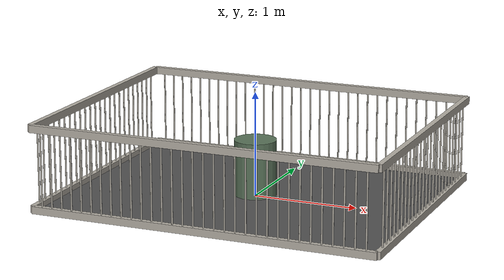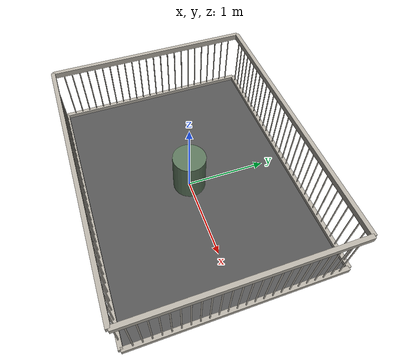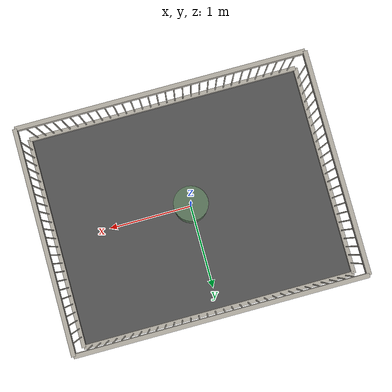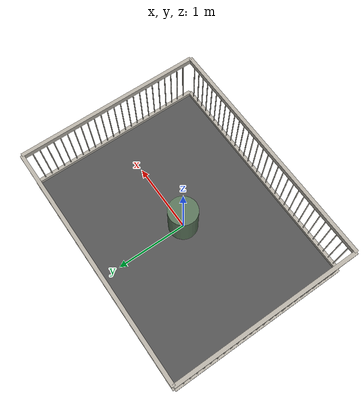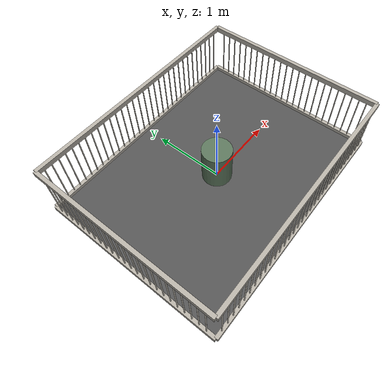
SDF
<?xml version="1.0" ?>
<sdf version="1.9">
  <world name="pig_pen_world">
    <gravity>0 0 -9.8</gravity>
    <magnetic_field>0 0 0</magnetic_field>
    <atmosphere type="adiabatic"/>

    <!-- Gazebo 核心系統：物理, 命令與場景廣播 -->
    <plugin
      filename="gz-sim-physics-system"
      name="gz::sim::systems::Physics">
    </plugin>
    <plugin
      filename="gz-sim-user-commands-system"
      name="gz::sim::systems::UserCommands">
    </plugin>
    <plugin
      filename="gz-sim-scene-broadcaster-system"
      name="gz::sim::systems::SceneBroadcaster">
    </plugin>

    <!-- 太陽光源 -->
    <light name="sun" type="directional">
      <cast_shadows>true</cast_shadows>
      <pose>0 0 10 0 0 0</pose>
      <diffuse>0.9 0.9 0.9 1</diffuse>
      <specular>0.2 0.2 0.2 1</specular>
      <direction>-0.4 0.1 -1</direction>
    </light>

    <!-- 地板：豬舍鳥瞰為 3.30m x 2.55m 長方形 -->
    <model name="floor">
      <static>true</static>
      <pose>0 0 0.01 0 0 0</pose>
      <link name="link">
        <collision name="collision">
          <geometry>
            <box>
              <size>3.30 2.55 0.02</size>
            </box>
          </geometry>
        </collision>
        <visual name="visual">
          <geometry>
            <box>
              <size>3.30 2.55 0.02</size>
            </box>
          </geometry>
          <material>
            <ambient>0.25 0.25 0.25 1</ambient>
            <diffuse>0.32 0.32 0.32 1</diffuse>
            <specular>0.05 0.05 0.05 1</specular>
          </material>
        </visual>
      </link>
    </model>

    <!-- left_wall：長 3.30m, 高 0.83m（欄杆化：直徑1.5cm，間距8.5cm，共32根） -->
    <model name="left_wall">
      <static>true</static>
      <pose>0 1.275 0 0 0 0</pose>
      <link name="link">
        <collision name="top_rail_col"><pose>0 0 0.795 0 0 0</pose><geometry><box><size>3.30 0.05 0.07</size></box></geometry></collision>
        <visual name="top_rail_vis"><pose>0 0 0.795 0 0 0</pose><geometry><box><size>3.30 0.05 0.07</size></box></geometry>
          <material><ambient>0.70 0.68 0.64 1</ambient><diffuse>0.70 0.68 0.64 1</diffuse></material></visual>
        <collision name="bottom_rail_col"><pose>0 0 0.035 0 0 0</pose><geometry><box><size>3.30 0.05 0.07</size></box></geometry></collision>
        <visual name="bottom_rail_vis"><pose>0 0 0.035 0 0 0</pose><geometry><box><size>3.30 0.05 0.07</size></box></geometry>
          <material><ambient>0.70 0.68 0.64 1</ambient><diffuse>0.70 0.68 0.64 1</diffuse></material></visual>
        <collision name="bar_01_col"><pose>-1.55 0 0.415 0 0 0</pose><geometry><cylinder><radius>0.0075</radius><length>0.69</length></cylinder></geometry></collision><visual name="bar_01_vis"><pose>-1.55 0 0.415 0 0 0</pose><geometry><cylinder><radius>0.0075</radius><length>0.69</length></cylinder></geometry><material><ambient>0.70 0.68 0.64 1</ambient><diffuse>0.70 0.68 0.64 1</diffuse></material></visual>
        <collision name="bar_02_col"><pose>-1.45 0 0.415 0 0 0</pose><geometry><cylinder><radius>0.0075</radius><length>0.69</length></cylinder></geometry></collision><visual name="bar_02_vis"><pose>-1.45 0 0.415 0 0 0</pose><geometry><cylinder><radius>0.0075</radius><length>0.69</length></cylinder></geometry><material><ambient>0.70 0.68 0.64 1</ambient><diffuse>0.70 0.68 0.64 1</diffuse></material></visual>
        <collision name="bar_03_col"><pose>-1.35 0 0.415 0 0 0</pose><geometry><cylinder><radius>0.0075</radius><length>0.69</length></cylinder></geometry></collision><visual name="bar_03_vis"><pose>-1.35 0 0.415 0 0 0</pose><geometry><cylinder><radius>0.0075</radius><length>0.69</length></cylinder></geometry><material><ambient>0.70 0.68 0.64 1</ambient><diffuse>0.70 0.68 0.64 1</diffuse></material></visual>
        <collision name="bar_04_col"><pose>-1.25 0 0.415 0 0 0</pose><geometry><cylinder><radius>0.0075</radius><length>0.69</length></cylinder></geometry></collision><visual name="bar_04_vis"><pose>-1.25 0 0.415 0 0 0</pose><geometry><cylinder><radius>0.0075</radius><length>0.69</length></cylinder></geometry><material><ambient>0.70 0.68 0.64 1</ambient><diffuse>0.70 0.68 0.64 1</diffuse></material></visual>
        <collision name="bar_05_col"><pose>-1.15 0 0.415 0 0 0</pose><geometry><cylinder><radius>0.0075</radius><length>0.69</length></cylinder></geometry></collision><visual name="bar_05_vis"><pose>-1.15 0 0.415 0 0 0</pose><geometry><cylinder><radius>0.0075</radius><length>0.69</length></cylinder></geometry><material><ambient>0.70 0.68 0.64 1</ambient><diffuse>0.70 0.68 0.64 1</diffuse></material></visual>
        <collision name="bar_06_col"><pose>-1.05 0 0.415 0 0 0</pose><geometry><cylinder><radius>0.0075</radius><length>0.69</length></cylinder></geometry></collision><visual name="bar_06_vis"><pose>-1.05 0 0.415 0 0 0</pose><geometry><cylinder><radius>0.0075</radius><length>0.69</length></cylinder></geometry><material><ambient>0.70 0.68 0.64 1</ambient><diffuse>0.70 0.68 0.64 1</diffuse></material></visual>
        <collision name="bar_07_col"><pose>-0.95 0 0.415 0 0 0</pose><geometry><cylinder><radius>0.0075</radius><length>0.69</length></cylinder></geometry></collision><visual name="bar_07_vis"><pose>-0.95 0 0.415 0 0 0</pose><geometry><cylinder><radius>0.0075</radius><length>0.69</length></cylinder></geometry><material><ambient>0.70 0.68 0.64 1</ambient><diffuse>0.70 0.68 0.64 1</diffuse></material></visual>
        <collision name="bar_08_col"><pose>-0.85 0 0.415 0 0 0</pose><geometry><cylinder><radius>0.0075</radius><length>0.69</length></cylinder></geometry></collision><visual name="bar_08_vis"><pose>-0.85 0 0.415 0 0 0</pose><geometry><cylinder><radius>0.0075</radius><length>0.69</length></cylinder></geometry><material><ambient>0.70 0.68 0.64 1</ambient><diffuse>0.70 0.68 0.64 1</diffuse></material></visual>
        <collision name="bar_09_col"><pose>-0.75 0 0.415 0 0 0</pose><geometry><cylinder><radius>0.0075</radius><length>0.69</length></cylinder></geometry></collision><visual name="bar_09_vis"><pose>-0.75 0 0.415 0 0 0</pose><geometry><cylinder><radius>0.0075</radius><length>0.69</length></cylinder></geometry><material><ambient>0.70 0.68 0.64 1</ambient><diffuse>0.70 0.68 0.64 1</diffuse></material></visual>
        <collision name="bar_10_col"><pose>-0.65 0 0.415 0 0 0</pose><geometry><cylinder><radius>0.0075</radius><length>0.69</length></cylinder></geometry></collision><visual name="bar_10_vis"><pose>-0.65 0 0.415 0 0 0</pose><geometry><cylinder><radius>0.0075</radius><length>0.69</length></cylinder></geometry><material><ambient>0.70 0.68 0.64 1</ambient><diffuse>0.70 0.68 0.64 1</diffuse></material></visual>
        <collision name="bar_11_col"><pose>-0.55 0 0.415 0 0 0</pose><geometry><cylinder><radius>0.0075</radius><length>0.69</length></cylinder></geometry></collision><visual name="bar_11_vis"><pose>-0.55 0 0.415 0 0 0</pose><geometry><cylinder><radius>0.0075</radius><length>0.69</length></cylinder></geometry><material><ambient>0.70 0.68 0.64 1</ambient><diffuse>0.70 0.68 0.64 1</diffuse></material></visual>
        <collision name="bar_12_col"><pose>-0.45 0 0.415 0 0 0</pose><geometry><cylinder><radius>0.0075</radius><length>0.69</length></cylinder></geometry></collision><visual name="bar_12_vis"><pose>-0.45 0 0.415 0 0 0</pose><geometry><cylinder><radius>0.0075</radius><length>0.69</length></cylinder></geometry><material><ambient>0.70 0.68 0.64 1</ambient><diffuse>0.70 0.68 0.64 1</diffuse></material></visual>
        <collision name="bar_13_col"><pose>-0.35 0 0.415 0 0 0</pose><geometry><cylinder><radius>0.0075</radius><length>0.69</length></cylinder></geometry></collision><visual name="bar_13_vis"><pose>-0.35 0 0.415 0 0 0</pose><geometry><cylinder><radius>0.0075</radius><length>0.69</length></cylinder></geometry><material><ambient>0.70 0.68 0.64 1</ambient><diffuse>0.70 0.68 0.64 1</diffuse></material></visual>
        <collision name="bar_14_col"><pose>-0.25 0 0.415 0 0 0</pose><geometry><cylinder><radius>0.0075</radius><length>0.69</length></cylinder></geometry></collision><visual name="bar_14_vis"><pose>-0.25 0 0.415 0 0 0</pose><geometry><cylinder><radius>0.0075</radius><length>0.69</length></cylinder></geometry><material><ambient>0.70 0.68 0.64 1</ambient><diffuse>0.70 0.68 0.64 1</diffuse></material></visual>
        <collision name="bar_15_col"><pose>-0.15 0 0.415 0 0 0</pose><geometry><cylinder><radius>0.0075</radius><length>0.69</length></cylinder></geometry></collision><visual name="bar_15_vis"><pose>-0.15 0 0.415 0 0 0</pose><geometry><cylinder><radius>0.0075</radius><length>0.69</length></cylinder></geometry><material><ambient>0.70 0.68 0.64 1</ambient><diffuse>0.70 0.68 0.64 1</diffuse></material></visual>
        <collision name="bar_16_col"><pose>-0.05 0 0.415 0 0 0</pose><geometry><cylinder><radius>0.0075</radius><length>0.69</length></cylinder></geometry></collision><visual name="bar_16_vis"><pose>-0.05 0 0.415 0 0 0</pose><geometry><cylinder><radius>0.0075</radius><length>0.69</length></cylinder></geometry><material><ambient>0.70 0.68 0.64 1</ambient><diffuse>0.70 0.68 0.64 1</diffuse></material></visual>
        <collision name="bar_17_col"><pose>0.05 0 0.415 0 0 0</pose><geometry><cylinder><radius>0.0075</radius><length>0.69</length></cylinder></geometry></collision><visual name="bar_17_vis"><pose>0.05 0 0.415 0 0 0</pose><geometry><cylinder><radius>0.0075</radius><length>0.69</length></cylinder></geometry><material><ambient>0.70 0.68 0.64 1</ambient><diffuse>0.70 0.68 0.64 1</diffuse></material></visual>
        <collision name="bar_18_col"><pose>0.15 0 0.415 0 0 0</pose><geometry><cylinder><radius>0.0075</radius><length>0.69</length></cylinder></geometry></collision><visual name="bar_18_vis"><pose>0.15 0 0.415 0 0 0</pose><geometry><cylinder><radius>0.0075</radius><length>0.69</length></cylinder></geometry><material><ambient>0.70 0.68 0.64 1</ambient><diffuse>0.70 0.68 0.64 1</diffuse></material></visual>
        <collision name="bar_19_col"><pose>0.25 0 0.415 0 0 0</pose><geometry><cylinder><radius>0.0075</radius><length>0.69</length></cylinder></geometry></collision><visual name="bar_19_vis"><pose>0.25 0 0.415 0 0 0</pose><geometry><cylinder><radius>0.0075</radius><length>0.69</length></cylinder></geometry><material><ambient>0.70 0.68 0.64 1</ambient><diffuse>0.70 0.68 0.64 1</diffuse></material></visual>
        <collision name="bar_20_col"><pose>0.35 0 0.415 0 0 0</pose><geometry><cylinder><radius>0.0075</radius><length>0.69</length></cylinder></geometry></collision><visual name="bar_20_vis"><pose>0.35 0 0.415 0 0 0</pose><geometry><cylinder><radius>0.0075</radius><length>0.69</length></cylinder></geometry><material><ambient>0.70 0.68 0.64 1</ambient><diffuse>0.70 0.68 0.64 1</diffuse></material></visual>
        <collision name="bar_21_col"><pose>0.45 0 0.415 0 0 0</pose><geometry><cylinder><radius>0.0075</radius><length>0.69</length></cylinder></geometry></collision><visual name="bar_21_vis"><pose>0.45 0 0.415 0 0 0</pose><geometry><cylinder><radius>0.0075</radius><length>0.69</length></cylinder></geometry><material><ambient>0.70 0.68 0.64 1</ambient><diffuse>0.70 0.68 0.64 1</diffuse></material></visual>
        <collision name="bar_22_col"><pose>0.55 0 0.415 0 0 0</pose><geometry><cylinder><radius>0.0075</radius><length>0.69</length></cylinder></geometry></collision><visual name="bar_22_vis"><pose>0.55 0 0.415 0 0 0</pose><geometry><cylinder><radius>0.0075</radius><length>0.69</length></cylinder></geometry><material><ambient>0.70 0.68 0.64 1</ambient><diffuse>0.70 0.68 0.64 1</diffuse></material></visual>
        <collision name="bar_23_col"><pose>0.65 0 0.415 0 0 0</pose><geometry><cylinder><radius>0.0075</radius><length>0.69</length></cylinder></geometry></collision><visual name="bar_23_vis"><pose>0.65 0 0.415 0 0 0</pose><geometry><cylinder><radius>0.0075</radius><length>0.69</length></cylinder></geometry><material><ambient>0.70 0.68 0.64 1</ambient><diffuse>0.70 0.68 0.64 1</diffuse></material></visual>
        <collision name="bar_24_col"><pose>0.75 0 0.415 0 0 0</pose><geometry><cylinder><radius>0.0075</radius><length>0.69</length></cylinder></geometry></collision><visual name="bar_24_vis"><pose>0.75 0 0.415 0 0 0</pose><geometry><cylinder><radius>0.0075</radius><length>0.69</length></cylinder></geometry><material><ambient>0.70 0.68 0.64 1</ambient><diffuse>0.70 0.68 0.64 1</diffuse></material></visual>
        <collision name="bar_25_col"><pose>0.85 0 0.415 0 0 0</pose><geometry><cylinder><radius>0.0075</radius><length>0.69</length></cylinder></geometry></collision><visual name="bar_25_vis"><pose>0.85 0 0.415 0 0 0</pose><geometry><cylinder><radius>0.0075</radius><length>0.69</length></cylinder></geometry><material><ambient>0.70 0.68 0.64 1</ambient><diffuse>0.70 0.68 0.64 1</diffuse></material></visual>
        <collision name="bar_26_col"><pose>0.95 0 0.415 0 0 0</pose><geometry><cylinder><radius>0.0075</radius><length>0.69</length></cylinder></geometry></collision><visual name="bar_26_vis"><pose>0.95 0 0.415 0 0 0</pose><geometry><cylinder><radius>0.0075</radius><length>0.69</length></cylinder></geometry><material><ambient>0.70 0.68 0.64 1</ambient><diffuse>0.70 0.68 0.64 1</diffuse></material></visual>
        <collision name="bar_27_col"><pose>1.05 0 0.415 0 0 0</pose><geometry><cylinder><radius>0.0075</radius><length>0.69</length></cylinder></geometry></collision><visual name="bar_27_vis"><pose>1.05 0 0.415 0 0 0</pose><geometry><cylinder><radius>0.0075</radius><length>0.69</length></cylinder></geometry><material><ambient>0.70 0.68 0.64 1</ambient><diffuse>0.70 0.68 0.64 1</diffuse></material></visual>
        <collision name="bar_28_col"><pose>1.15 0 0.415 0 0 0</pose><geometry><cylinder><radius>0.0075</radius><length>0.69</length></cylinder></geometry></collision><visual name="bar_28_vis"><pose>1.15 0 0.415 0 0 0</pose><geometry><cylinder><radius>0.0075</radius><length>0.69</length></cylinder></geometry><material><ambient>0.70 0.68 0.64 1</ambient><diffuse>0.70 0.68 0.64 1</diffuse></material></visual>
        <collision name="bar_29_col"><pose>1.25 0 0.415 0 0 0</pose><geometry><cylinder><radius>0.0075</radius><length>0.69</length></cylinder></geometry></collision><visual name="bar_29_vis"><pose>1.25 0 0.415 0 0 0</pose><geometry><cylinder><radius>0.0075</radius><length>0.69</length></cylinder></geometry><material><ambient>0.70 0.68 0.64 1</ambient><diffuse>0.70 0.68 0.64 1</diffuse></material></visual>
        <collision name="bar_30_col"><pose>1.35 0 0.415 0 0 0</pose><geometry><cylinder><radius>0.0075</radius><length>0.69</length></cylinder></geometry></collision><visual name="bar_30_vis"><pose>1.35 0 0.415 0 0 0</pose><geometry><cylinder><radius>0.0075</radius><length>0.69</length></cylinder></geometry><material><ambient>0.70 0.68 0.64 1</ambient><diffuse>0.70 0.68 0.64 1</diffuse></material></visual>
        <collision name="bar_31_col"><pose>1.45 0 0.415 0 0 0</pose><geometry><cylinder><radius>0.0075</radius><length>0.69</length></cylinder></geometry></collision><visual name="bar_31_vis"><pose>1.45 0 0.415 0 0 0</pose><geometry><cylinder><radius>0.0075</radius><length>0.69</length></cylinder></geometry><material><ambient>0.70 0.68 0.64 1</ambient><diffuse>0.70 0.68 0.64 1</diffuse></material></visual>
        <collision name="bar_32_col"><pose>1.55 0 0.415 0 0 0</pose><geometry><cylinder><radius>0.0075</radius><length>0.69</length></cylinder></geometry></collision><visual name="bar_32_vis"><pose>1.55 0 0.415 0 0 0</pose><geometry><cylinder><radius>0.0075</radius><length>0.69</length></cylinder></geometry><material><ambient>0.70 0.68 0.64 1</ambient><diffuse>0.70 0.68 0.64 1</diffuse></material></visual>
      </link>
    </model>

    <!-- right_wall：長 3.30m, 高 0.83m（欄杆化：直徑1.5cm，間距8.5cm，共32根） -->
    <model name="right_wall">
      <static>true</static>
      <pose>0 -1.275 0 0 0 0</pose>
      <link name="link">
        <collision name="top_rail_col"><pose>0 0 0.795 0 0 0</pose><geometry><box><size>3.30 0.05 0.07</size></box></geometry></collision>
        <visual name="top_rail_vis"><pose>0 0 0.795 0 0 0</pose><geometry><box><size>3.30 0.05 0.07</size></box></geometry>
          <material><ambient>0.70 0.68 0.64 1</ambient><diffuse>0.70 0.68 0.64 1</diffuse></material></visual>
        <collision name="bottom_rail_col"><pose>0 0 0.035 0 0 0</pose><geometry><box><size>3.30 0.05 0.07</size></box></geometry></collision>
        <visual name="bottom_rail_vis"><pose>0 0 0.035 0 0 0</pose><geometry><box><size>3.30 0.05 0.07</size></box></geometry>
          <material><ambient>0.70 0.68 0.64 1</ambient><diffuse>0.70 0.68 0.64 1</diffuse></material></visual>
        <collision name="bar_01_col"><pose>-1.55 0 0.415 0 0 0</pose><geometry><cylinder><radius>0.0075</radius><length>0.69</length></cylinder></geometry></collision><visual name="bar_01_vis"><pose>-1.55 0 0.415 0 0 0</pose><geometry><cylinder><radius>0.0075</radius><length>0.69</length></cylinder></geometry><material><ambient>0.70 0.68 0.64 1</ambient><diffuse>0.70 0.68 0.64 1</diffuse></material></visual>
        <collision name="bar_02_col"><pose>-1.45 0 0.415 0 0 0</pose><geometry><cylinder><radius>0.0075</radius><length>0.69</length></cylinder></geometry></collision><visual name="bar_02_vis"><pose>-1.45 0 0.415 0 0 0</pose><geometry><cylinder><radius>0.0075</radius><length>0.69</length></cylinder></geometry><material><ambient>0.70 0.68 0.64 1</ambient><diffuse>0.70 0.68 0.64 1</diffuse></material></visual>
        <collision name="bar_03_col"><pose>-1.35 0 0.415 0 0 0</pose><geometry><cylinder><radius>0.0075</radius><length>0.69</length></cylinder></geometry></collision><visual name="bar_03_vis"><pose>-1.35 0 0.415 0 0 0</pose><geometry><cylinder><radius>0.0075</radius><length>0.69</length></cylinder></geometry><material><ambient>0.70 0.68 0.64 1</ambient><diffuse>0.70 0.68 0.64 1</diffuse></material></visual>
        <collision name="bar_04_col"><pose>-1.25 0 0.415 0 0 0</pose><geometry><cylinder><radius>0.0075</radius><length>0.69</length></cylinder></geometry></collision><visual name="bar_04_vis"><pose>-1.25 0 0.415 0 0 0</pose><geometry><cylinder><radius>0.0075</radius><length>0.69</length></cylinder></geometry><material><ambient>0.70 0.68 0.64 1</ambient><diffuse>0.70 0.68 0.64 1</diffuse></material></visual>
        <collision name="bar_05_col"><pose>-1.15 0 0.415 0 0 0</pose><geometry><cylinder><radius>0.0075</radius><length>0.69</length></cylinder></geometry></collision><visual name="bar_05_vis"><pose>-1.15 0 0.415 0 0 0</pose><geometry><cylinder><radius>0.0075</radius><length>0.69</length></cylinder></geometry><material><ambient>0.70 0.68 0.64 1</ambient><diffuse>0.70 0.68 0.64 1</diffuse></material></visual>
        <collision name="bar_06_col"><pose>-1.05 0 0.415 0 0 0</pose><geometry><cylinder><radius>0.0075</radius><length>0.69</length></cylinder></geometry></collision><visual name="bar_06_vis"><pose>-1.05 0 0.415 0 0 0</pose><geometry><cylinder><radius>0.0075</radius><length>0.69</length></cylinder></geometry><material><ambient>0.70 0.68 0.64 1</ambient><diffuse>0.70 0.68 0.64 1</diffuse></material></visual>
        <collision name="bar_07_col"><pose>-0.95 0 0.415 0 0 0</pose><geometry><cylinder><radius>0.0075</radius><length>0.69</length></cylinder></geometry></collision><visual name="bar_07_vis"><pose>-0.95 0 0.415 0 0 0</pose><geometry><cylinder><radius>0.0075</radius><length>0.69</length></cylinder></geometry><material><ambient>0.70 0.68 0.64 1</ambient><diffuse>0.70 0.68 0.64 1</diffuse></material></visual>
        <collision name="bar_08_col"><pose>-0.85 0 0.415 0 0 0</pose><geometry><cylinder><radius>0.0075</radius><length>0.69</length></cylinder></geometry></collision><visual name="bar_08_vis"><pose>-0.85 0 0.415 0 0 0</pose><geometry><cylinder><radius>0.0075</radius><length>0.69</length></cylinder></geometry><material><ambient>0.70 0.68 0.64 1</ambient><diffuse>0.70 0.68 0.64 1</diffuse></material></visual>
        <collision name="bar_09_col"><pose>-0.75 0 0.415 0 0 0</pose><geometry><cylinder><radius>0.0075</radius><length>0.69</length></cylinder></geometry></collision><visual name="bar_09_vis"><pose>-0.75 0 0.415 0 0 0</pose><geometry><cylinder><radius>0.0075</radius><length>0.69</length></cylinder></geometry><material><ambient>0.70 0.68 0.64 1</ambient><diffuse>0.70 0.68 0.64 1</diffuse></material></visual>
        <collision name="bar_10_col"><pose>-0.65 0 0.415 0 0 0</pose><geometry><cylinder><radius>0.0075</radius><length>0.69</length></cylinder></geometry></collision><visual name="bar_10_vis"><pose>-0.65 0 0.415 0 0 0</pose><geometry><cylinder><radius>0.0075</radius><length>0.69</length></cylinder></geometry><material><ambient>0.70 0.68 0.64 1</ambient><diffuse>0.70 0.68 0.64 1</diffuse></material></visual>
        <collision name="bar_11_col"><pose>-0.55 0 0.415 0 0 0</pose><geometry><cylinder><radius>0.0075</radius><length>0.69</length></cylinder></geometry></collision><visual name="bar_11_vis"><pose>-0.55 0 0.415 0 0 0</pose><geometry><cylinder><radius>0.0075</radius><length>0.69</length></cylinder></geometry><material><ambient>0.70 0.68 0.64 1</ambient><diffuse>0.70 0.68 0.64 1</diffuse></material></visual>
        <collision name="bar_12_col"><pose>-0.45 0 0.415 0 0 0</pose><geometry><cylinder><radius>0.0075</radius><length>0.69</length></cylinder></geometry></collision><visual name="bar_12_vis"><pose>-0.45 0 0.415 0 0 0</pose><geometry><cylinder><radius>0.0075</radius><length>0.69</length></cylinder></geometry><material><ambient>0.70 0.68 0.64 1</ambient><diffuse>0.70 0.68 0.64 1</diffuse></material></visual>
        <collision name="bar_13_col"><pose>-0.35 0 0.415 0 0 0</pose><geometry><cylinder><radius>0.0075</radius><length>0.69</length></cylinder></geometry></collision><visual name="bar_13_vis"><pose>-0.35 0 0.415 0 0 0</pose><geometry><cylinder><radius>0.0075</radius><length>0.69</length></cylinder></geometry><material><ambient>0.70 0.68 0.64 1</ambient><diffuse>0.70 0.68 0.64 1</diffuse></material></visual>
        <collision name="bar_14_col"><pose>-0.25 0 0.415 0 0 0</pose><geometry><cylinder><radius>0.0075</radius><length>0.69</length></cylinder></geometry></collision><visual name="bar_14_vis"><pose>-0.25 0 0.415 0 0 0</pose><geometry><cylinder><radius>0.0075</radius><length>0.69</length></cylinder></geometry><material><ambient>0.70 0.68 0.64 1</ambient><diffuse>0.70 0.68 0.64 1</diffuse></material></visual>
        <collision name="bar_15_col"><pose>-0.15 0 0.415 0 0 0</pose><geometry><cylinder><radius>0.0075</radius><length>0.69</length></cylinder></geometry></collision><visual name="bar_15_vis"><pose>-0.15 0 0.415 0 0 0</pose><geometry><cylinder><radius>0.0075</radius><length>0.69</length></cylinder></geometry><material><ambient>0.70 0.68 0.64 1</ambient><diffuse>0.70 0.68 0.64 1</diffuse></material></visual>
        <collision name="bar_16_col"><pose>-0.05 0 0.415 0 0 0</pose><geometry><cylinder><radius>0.0075</radius><length>0.69</length></cylinder></geometry></collision><visual name="bar_16_vis"><pose>-0.05 0 0.415 0 0 0</pose><geometry><cylinder><radius>0.0075</radius><length>0.69</length></cylinder></geometry><material><ambient>0.70 0.68 0.64 1</ambient><diffuse>0.70 0.68 0.64 1</diffuse></material></visual>
        <collision name="bar_17_col"><pose>0.05 0 0.415 0 0 0</pose><geometry><cylinder><radius>0.0075</radius><length>0.69</length></cylinder></geometry></collision><visual name="bar_17_vis"><pose>0.05 0 0.415 0 0 0</pose><geometry><cylinder><radius>0.0075</radius><length>0.69</length></cylinder></geometry><material><ambient>0.70 0.68 0.64 1</ambient><diffuse>0.70 0.68 0.64 1</diffuse></material></visual>
        <collision name="bar_18_col"><pose>0.15 0 0.415 0 0 0</pose><geometry><cylinder><radius>0.0075</radius><length>0.69</length></cylinder></geometry></collision><visual name="bar_18_vis"><pose>0.15 0 0.415 0 0 0</pose><geometry><cylinder><radius>0.0075</radius><length>0.69</length></cylinder></geometry><material><ambient>0.70 0.68 0.64 1</ambient><diffuse>0.70 0.68 0.64 1</diffuse></material></visual>
        <collision name="bar_19_col"><pose>0.25 0 0.415 0 0 0</pose><geometry><cylinder><radius>0.0075</radius><length>0.69</length></cylinder></geometry></collision><visual name="bar_19_vis"><pose>0.25 0 0.415 0 0 0</pose><geometry><cylinder><radius>0.0075</radius><length>0.69</length></cylinder></geometry><material><ambient>0.70 0.68 0.64 1</ambient><diffuse>0.70 0.68 0.64 1</diffuse></material></visual>
        <collision name="bar_20_col"><pose>0.35 0 0.415 0 0 0</pose><geometry><cylinder><radius>0.0075</radius><length>0.69</length></cylinder></geometry></collision><visual name="bar_20_vis"><pose>0.35 0 0.415 0 0 0</pose><geometry><cylinder><radius>0.0075</radius><length>0.69</length></cylinder></geometry><material><ambient>0.70 0.68 0.64 1</ambient><diffuse>0.70 0.68 0.64 1</diffuse></material></visual>
        <collision name="bar_21_col"><pose>0.45 0 0.415 0 0 0</pose><geometry><cylinder><radius>0.0075</radius><length>0.69</length></cylinder></geometry></collision><visual name="bar_21_vis"><pose>0.45 0 0.415 0 0 0</pose><geometry><cylinder><radius>0.0075</radius><length>0.69</length></cylinder></geometry><material><ambient>0.70 0.68 0.64 1</ambient><diffuse>0.70 0.68 0.64 1</diffuse></material></visual>
        <collision name="bar_22_col"><pose>0.55 0 0.415 0 0 0</pose><geometry><cylinder><radius>0.0075</radius><length>0.69</length></cylinder></geometry></collision><visual name="bar_22_vis"><pose>0.55 0 0.415 0 0 0</pose><geometry><cylinder><radius>0.0075</radius><length>0.69</length></cylinder></geometry><material><ambient>0.70 0.68 0.64 1</ambient><diffuse>0.70 0.68 0.64 1</diffuse></material></visual>
        <collision name="bar_23_col"><pose>0.65 0 0.415 0 0 0</pose><geometry><cylinder><radius>0.0075</radius><length>0.69</length></cylinder></geometry></collision><visual name="bar_23_vis"><pose>0.65 0 0.415 0 0 0</pose><geometry><cylinder><radius>0.0075</radius><length>0.69</length></cylinder></geometry><material><ambient>0.70 0.68 0.64 1</ambient><diffuse>0.70 0.68 0.64 1</diffuse></material></visual>
        <collision name="bar_24_col"><pose>0.75 0 0.415 0 0 0</pose><geometry><cylinder><radius>0.0075</radius><length>0.69</length></cylinder></geometry></collision><visual name="bar_24_vis"><pose>0.75 0 0.415 0 0 0</pose><geometry><cylinder><radius>0.0075</radius><length>0.69</length></cylinder></geometry><material><ambient>0.70 0.68 0.64 1</ambient><diffuse>0.70 0.68 0.64 1</diffuse></material></visual>
        <collision name="bar_25_col"><pose>0.85 0 0.415 0 0 0</pose><geometry><cylinder><radius>0.0075</radius><length>0.69</length></cylinder></geometry></collision><visual name="bar_25_vis"><pose>0.85 0 0.415 0 0 0</pose><geometry><cylinder><radius>0.0075</radius><length>0.69</length></cylinder></geometry><material><ambient>0.70 0.68 0.64 1</ambient><diffuse>0.70 0.68 0.64 1</diffuse></material></visual>
        <collision name="bar_26_col"><pose>0.95 0 0.415 0 0 0</pose><geometry><cylinder><radius>0.0075</radius><length>0.69</length></cylinder></geometry></collision><visual name="bar_26_vis"><pose>0.95 0 0.415 0 0 0</pose><geometry><cylinder><radius>0.0075</radius><length>0.69</length></cylinder></geometry><material><ambient>0.70 0.68 0.64 1</ambient><diffuse>0.70 0.68 0.64 1</diffuse></material></visual>
        <collision name="bar_27_col"><pose>1.05 0 0.415 0 0 0</pose><geometry><cylinder><radius>0.0075</radius><length>0.69</length></cylinder></geometry></collision><visual name="bar_27_vis"><pose>1.05 0 0.415 0 0 0</pose><geometry><cylinder><radius>0.0075</radius><length>0.69</length></cylinder></geometry><material><ambient>0.70 0.68 0.64 1</ambient><diffuse>0.70 0.68 0.64 1</diffuse></material></visual>
        <collision name="bar_28_col"><pose>1.15 0 0.415 0 0 0</pose><geometry><cylinder><radius>0.0075</radius><length>0.69</length></cylinder></geometry></collision><visual name="bar_28_vis"><pose>1.15 0 0.415 0 0 0</pose><geometry><cylinder><radius>0.0075</radius><length>0.69</length></cylinder></geometry><material><ambient>0.70 0.68 0.64 1</ambient><diffuse>0.70 0.68 0.64 1</diffuse></material></visual>
        <collision name="bar_29_col"><pose>1.25 0 0.415 0 0 0</pose><geometry><cylinder><radius>0.0075</radius><length>0.69</length></cylinder></geometry></collision><visual name="bar_29_vis"><pose>1.25 0 0.415 0 0 0</pose><geometry><cylinder><radius>0.0075</radius><length>0.69</length></cylinder></geometry><material><ambient>0.70 0.68 0.64 1</ambient><diffuse>0.70 0.68 0.64 1</diffuse></material></visual>
        <collision name="bar_30_col"><pose>1.35 0 0.415 0 0 0</pose><geometry><cylinder><radius>0.0075</radius><length>0.69</length></cylinder></geometry></collision><visual name="bar_30_vis"><pose>1.35 0 0.415 0 0 0</pose><geometry><cylinder><radius>0.0075</radius><length>0.69</length></cylinder></geometry><material><ambient>0.70 0.68 0.64 1</ambient><diffuse>0.70 0.68 0.64 1</diffuse></material></visual>
        <collision name="bar_31_col"><pose>1.45 0 0.415 0 0 0</pose><geometry><cylinder><radius>0.0075</radius><length>0.69</length></cylinder></geometry></collision><visual name="bar_31_vis"><pose>1.45 0 0.415 0 0 0</pose><geometry><cylinder><radius>0.0075</radius><length>0.69</length></cylinder></geometry><material><ambient>0.70 0.68 0.64 1</ambient><diffuse>0.70 0.68 0.64 1</diffuse></material></visual>
        <collision name="bar_32_col"><pose>1.55 0 0.415 0 0 0</pose><geometry><cylinder><radius>0.0075</radius><length>0.69</length></cylinder></geometry></collision><visual name="bar_32_vis"><pose>1.55 0 0.415 0 0 0</pose><geometry><cylinder><radius>0.0075</radius><length>0.69</length></cylinder></geometry><material><ambient>0.70 0.68 0.64 1</ambient><diffuse>0.70 0.68 0.64 1</diffuse></material></visual>
      </link>
    </model>

    <!-- back_wall：長 2.55m, 高 0.83m（欄杆化：直徑1.5cm，間距8.5cm，共24根） -->
    <model name="back_wall">
      <static>true</static>
      <pose>1.65 0 0 0 0 0</pose>
      <link name="link">
        <collision name="top_rail_col"><pose>0 0 0.795 0 0 0</pose><geometry><box><size>0.05 2.55 0.07</size></box></geometry></collision>
        <visual name="top_rail_vis"><pose>0 0 0.795 0 0 0</pose><geometry><box><size>0.05 2.55 0.07</size></box></geometry>
          <material><ambient>0.70 0.68 0.64 1</ambient><diffuse>0.70 0.68 0.64 1</diffuse></material></visual>
        <collision name="bottom_rail_col"><pose>0 0 0.035 0 0 0</pose><geometry><box><size>0.05 2.55 0.07</size></box></geometry></collision>
        <visual name="bottom_rail_vis"><pose>0 0 0.035 0 0 0</pose><geometry><box><size>0.05 2.55 0.07</size></box></geometry>
          <material><ambient>0.70 0.68 0.64 1</ambient><diffuse>0.70 0.68 0.64 1</diffuse></material></visual>
        <collision name="bar_01_col"><pose>0 -1.15 0.415 0 0 0</pose><geometry><cylinder><radius>0.0075</radius><length>0.69</length></cylinder></geometry></collision><visual name="bar_01_vis"><pose>0 -1.15 0.415 0 0 0</pose><geometry><cylinder><radius>0.0075</radius><length>0.69</length></cylinder></geometry><material><ambient>0.70 0.68 0.64 1</ambient><diffuse>0.70 0.68 0.64 1</diffuse></material></visual>
        <collision name="bar_02_col"><pose>0 -1.05 0.415 0 0 0</pose><geometry><cylinder><radius>0.0075</radius><length>0.69</length></cylinder></geometry></collision><visual name="bar_02_vis"><pose>0 -1.05 0.415 0 0 0</pose><geometry><cylinder><radius>0.0075</radius><length>0.69</length></cylinder></geometry><material><ambient>0.70 0.68 0.64 1</ambient><diffuse>0.70 0.68 0.64 1</diffuse></material></visual>
        <collision name="bar_03_col"><pose>0 -0.95 0.415 0 0 0</pose><geometry><cylinder><radius>0.0075</radius><length>0.69</length></cylinder></geometry></collision><visual name="bar_03_vis"><pose>0 -0.95 0.415 0 0 0</pose><geometry><cylinder><radius>0.0075</radius><length>0.69</length></cylinder></geometry><material><ambient>0.70 0.68 0.64 1</ambient><diffuse>0.70 0.68 0.64 1</diffuse></material></visual>
        <collision name="bar_04_col"><pose>0 -0.85 0.415 0 0 0</pose><geometry><cylinder><radius>0.0075</radius><length>0.69</length></cylinder></geometry></collision><visual name="bar_04_vis"><pose>0 -0.85 0.415 0 0 0</pose><geometry><cylinder><radius>0.0075</radius><length>0.69</length></cylinder></geometry><material><ambient>0.70 0.68 0.64 1</ambient><diffuse>0.70 0.68 0.64 1</diffuse></material></visual>
        <collision name="bar_05_col"><pose>0 -0.75 0.415 0 0 0</pose><geometry><cylinder><radius>0.0075</radius><length>0.69</length></cylinder></geometry></collision><visual name="bar_05_vis"><pose>0 -0.75 0.415 0 0 0</pose><geometry><cylinder><radius>0.0075</radius><length>0.69</length></cylinder></geometry><material><ambient>0.70 0.68 0.64 1</ambient><diffuse>0.70 0.68 0.64 1</diffuse></material></visual>
        <collision name="bar_06_col"><pose>0 -0.65 0.415 0 0 0</pose><geometry><cylinder><radius>0.0075</radius><length>0.69</length></cylinder></geometry></collision><visual name="bar_06_vis"><pose>0 -0.65 0.415 0 0 0</pose><geometry><cylinder><radius>0.0075</radius><length>0.69</length></cylinder></geometry><material><ambient>0.70 0.68 0.64 1</ambient><diffuse>0.70 0.68 0.64 1</diffuse></material></visual>
        <collision name="bar_07_col"><pose>0 -0.55 0.415 0 0 0</pose><geometry><cylinder><radius>0.0075</radius><length>0.69</length></cylinder></geometry></collision><visual name="bar_07_vis"><pose>0 -0.55 0.415 0 0 0</pose><geometry><cylinder><radius>0.0075</radius><length>0.69</length></cylinder></geometry><material><ambient>0.70 0.68 0.64 1</ambient><diffuse>0.70 0.68 0.64 1</diffuse></material></visual>
        <collision name="bar_08_col"><pose>0 -0.45 0.415 0 0 0</pose><geometry><cylinder><radius>0.0075</radius><length>0.69</length></cylinder></geometry></collision><visual name="bar_08_vis"><pose>0 -0.45 0.415 0 0 0</pose><geometry><cylinder><radius>0.0075</radius><length>0.69</length></cylinder></geometry><material><ambient>0.70 0.68 0.64 1</ambient><diffuse>0.70 0.68 0.64 1</diffuse></material></visual>
        <collision name="bar_09_col"><pose>0 -0.35 0.415 0 0 0</pose><geometry><cylinder><radius>0.0075</radius><length>0.69</length></cylinder></geometry></collision><visual name="bar_09_vis"><pose>0 -0.35 0.415 0 0 0</pose><geometry><cylinder><radius>0.0075</radius><length>0.69</length></cylinder></geometry><material><ambient>0.70 0.68 0.64 1</ambient><diffuse>0.70 0.68 0.64 1</diffuse></material></visual>
        <collision name="bar_10_col"><pose>0 -0.25 0.415 0 0 0</pose><geometry><cylinder><radius>0.0075</radius><length>0.69</length></cylinder></geometry></collision><visual name="bar_10_vis"><pose>0 -0.25 0.415 0 0 0</pose><geometry><cylinder><radius>0.0075</radius><length>0.69</length></cylinder></geometry><material><ambient>0.70 0.68 0.64 1</ambient><diffuse>0.70 0.68 0.64 1</diffuse></material></visual>
        <collision name="bar_11_col"><pose>0 -0.15 0.415 0 0 0</pose><geometry><cylinder><radius>0.0075</radius><length>0.69</length></cylinder></geometry></collision><visual name="bar_11_vis"><pose>0 -0.15 0.415 0 0 0</pose><geometry><cylinder><radius>0.0075</radius><length>0.69</length></cylinder></geometry><material><ambient>0.70 0.68 0.64 1</ambient><diffuse>0.70 0.68 0.64 1</diffuse></material></visual>
        <collision name="bar_12_col"><pose>0 -0.05 0.415 0 0 0</pose><geometry><cylinder><radius>0.0075</radius><length>0.69</length></cylinder></geometry></collision><visual name="bar_12_vis"><pose>0 -0.05 0.415 0 0 0</pose><geometry><cylinder><radius>0.0075</radius><length>0.69</length></cylinder></geometry><material><ambient>0.70 0.68 0.64 1</ambient><diffuse>0.70 0.68 0.64 1</diffuse></material></visual>
        <collision name="bar_13_col"><pose>0 0.05 0.415 0 0 0</pose><geometry><cylinder><radius>0.0075</radius><length>0.69</length></cylinder></geometry></collision><visual name="bar_13_vis"><pose>0 0.05 0.415 0 0 0</pose><geometry><cylinder><radius>0.0075</radius><length>0.69</length></cylinder></geometry><material><ambient>0.70 0.68 0.64 1</ambient><diffuse>0.70 0.68 0.64 1</diffuse></material></visual>
        <collision name="bar_14_col"><pose>0 0.15 0.415 0 0 0</pose><geometry><cylinder><radius>0.0075</radius><length>0.69</length></cylinder></geometry></collision><visual name="bar_14_vis"><pose>0 0.15 0.415 0 0 0</pose><geometry><cylinder><radius>0.0075</radius><length>0.69</length></cylinder></geometry><material><ambient>0.70 0.68 0.64 1</ambient><diffuse>0.70 0.68 0.64 1</diffuse></material></visual>
        <collision name="bar_15_col"><pose>0 0.25 0.415 0 0 0</pose><geometry><cylinder><radius>0.0075</radius><length>0.69</length></cylinder></geometry></collision><visual name="bar_15_vis"><pose>0 0.25 0.415 0 0 0</pose><geometry><cylinder><radius>0.0075</radius><length>0.69</length></cylinder></geometry><material><ambient>0.70 0.68 0.64 1</ambient><diffuse>0.70 0.68 0.64 1</diffuse></material></visual>
        <collision name="bar_16_col"><pose>0 0.35 0.415 0 0 0</pose><geometry><cylinder><radius>0.0075</radius><length>0.69</length></cylinder></geometry></collision><visual name="bar_16_vis"><pose>0 0.35 0.415 0 0 0</pose><geometry><cylinder><radius>0.0075</radius><length>0.69</length></cylinder></geometry><material><ambient>0.70 0.68 0.64 1</ambient><diffuse>0.70 0.68 0.64 1</diffuse></material></visual>
        <collision name="bar_17_col"><pose>0 0.45 0.415 0 0 0</pose><geometry><cylinder><radius>0.0075</radius><length>0.69</length></cylinder></geometry></collision><visual name="bar_17_vis"><pose>0 0.45 0.415 0 0 0</pose><geometry><cylinder><radius>0.0075</radius><length>0.69</length></cylinder></geometry><material><ambient>0.70 0.68 0.64 1</ambient><diffuse>0.70 0.68 0.64 1</diffuse></material></visual>
        <collision name="bar_18_col"><pose>0 0.55 0.415 0 0 0</pose><geometry><cylinder><radius>0.0075</radius><length>0.69</length></cylinder></geometry></collision><visual name="bar_18_vis"><pose>0 0.55 0.415 0 0 0</pose><geometry><cylinder><radius>0.0075</radius><length>0.69</length></cylinder></geometry><material><ambient>0.70 0.68 0.64 1</ambient><diffuse>0.70 0.68 0.64 1</diffuse></material></visual>
        <collision name="bar_19_col"><pose>0 0.65 0.415 0 0 0</pose><geometry><cylinder><radius>0.0075</radius><length>0.69</length></cylinder></geometry></collision><visual name="bar_19_vis"><pose>0 0.65 0.415 0 0 0</pose><geometry><cylinder><radius>0.0075</radius><length>0.69</length></cylinder></geometry><material><ambient>0.70 0.68 0.64 1</ambient><diffuse>0.70 0.68 0.64 1</diffuse></material></visual>
        <collision name="bar_20_col"><pose>0 0.75 0.415 0 0 0</pose><geometry><cylinder><radius>0.0075</radius><length>0.69</length></cylinder></geometry></collision><visual name="bar_20_vis"><pose>0 0.75 0.415 0 0 0</pose><geometry><cylinder><radius>0.0075</radius><length>0.69</length></cylinder></geometry><material><ambient>0.70 0.68 0.64 1</ambient><diffuse>0.70 0.68 0.64 1</diffuse></material></visual>
        <collision name="bar_21_col"><pose>0 0.85 0.415 0 0 0</pose><geometry><cylinder><radius>0.0075</radius><length>0.69</length></cylinder></geometry></collision><visual name="bar_21_vis"><pose>0 0.85 0.415 0 0 0</pose><geometry><cylinder><radius>0.0075</radius><length>0.69</length></cylinder></geometry><material><ambient>0.70 0.68 0.64 1</ambient><diffuse>0.70 0.68 0.64 1</diffuse></material></visual>
        <collision name="bar_22_col"><pose>0 0.95 0.415 0 0 0</pose><geometry><cylinder><radius>0.0075</radius><length>0.69</length></cylinder></geometry></collision><visual name="bar_22_vis"><pose>0 0.95 0.415 0 0 0</pose><geometry><cylinder><radius>0.0075</radius><length>0.69</length></cylinder></geometry><material><ambient>0.70 0.68 0.64 1</ambient><diffuse>0.70 0.68 0.64 1</diffuse></material></visual>
        <collision name="bar_23_col"><pose>0 1.05 0.415 0 0 0</pose><geometry><cylinder><radius>0.0075</radius><length>0.69</length></cylinder></geometry></collision><visual name="bar_23_vis"><pose>0 1.05 0.415 0 0 0</pose><geometry><cylinder><radius>0.0075</radius><length>0.69</length></cylinder></geometry><material><ambient>0.70 0.68 0.64 1</ambient><diffuse>0.70 0.68 0.64 1</diffuse></material></visual>
        <collision name="bar_24_col"><pose>0 1.15 0.415 0 0 0</pose><geometry><cylinder><radius>0.0075</radius><length>0.69</length></cylinder></geometry></collision><visual name="bar_24_vis"><pose>0 1.15 0.415 0 0 0</pose><geometry><cylinder><radius>0.0075</radius><length>0.69</length></cylinder></geometry><material><ambient>0.70 0.68 0.64 1</ambient><diffuse>0.70 0.68 0.64 1</diffuse></material></visual>
      </link>
    </model>

    <!-- front_wall：長 2.55m, 高 0.83m（欄杆化：直徑1.5cm，間距8.5cm，共24根） -->
    <model name="front_wall">
      <static>true</static>
      <pose>-1.65 0 0 0 0 0</pose>
      <link name="link">
        <collision name="top_rail_col"><pose>0 0 0.795 0 0 0</pose><geometry><box><size>0.05 2.55 0.07</size></box></geometry></collision>
        <visual name="top_rail_vis"><pose>0 0 0.795 0 0 0</pose><geometry><box><size>0.05 2.55 0.07</size></box></geometry>
          <material><ambient>0.70 0.68 0.64 1</ambient><diffuse>0.70 0.68 0.64 1</diffuse></material></visual>
        <collision name="bottom_rail_col"><pose>0 0 0.035 0 0 0</pose><geometry><box><size>0.05 2.55 0.07</size></box></geometry></collision>
        <visual name="bottom_rail_vis"><pose>0 0 0.035 0 0 0</pose><geometry><box><size>0.05 2.55 0.07</size></box></geometry>
          <material><ambient>0.70 0.68 0.64 1</ambient><diffuse>0.70 0.68 0.64 1</diffuse></material></visual>
        <collision name="bar_01_col"><pose>0 -1.15 0.415 0 0 0</pose><geometry><cylinder><radius>0.0075</radius><length>0.69</length></cylinder></geometry></collision><visual name="bar_01_vis"><pose>0 -1.15 0.415 0 0 0</pose><geometry><cylinder><radius>0.0075</radius><length>0.69</length></cylinder></geometry><material><ambient>0.70 0.68 0.64 1</ambient><diffuse>0.70 0.68 0.64 1</diffuse></material></visual>
        <collision name="bar_02_col"><pose>0 -1.05 0.415 0 0 0</pose><geometry><cylinder><radius>0.0075</radius><length>0.69</length></cylinder></geometry></collision><visual name="bar_02_vis"><pose>0 -1.05 0.415 0 0 0</pose><geometry><cylinder><radius>0.0075</radius><length>0.69</length></cylinder></geometry><material><ambient>0.70 0.68 0.64 1</ambient><diffuse>0.70 0.68 0.64 1</diffuse></material></visual>
        <collision name="bar_03_col"><pose>0 -0.95 0.415 0 0 0</pose><geometry><cylinder><radius>0.0075</radius><length>0.69</length></cylinder></geometry></collision><visual name="bar_03_vis"><pose>0 -0.95 0.415 0 0 0</pose><geometry><cylinder><radius>0.0075</radius><length>0.69</length></cylinder></geometry><material><ambient>0.70 0.68 0.64 1</ambient><diffuse>0.70 0.68 0.64 1</diffuse></material></visual>
        <collision name="bar_04_col"><pose>0 -0.85 0.415 0 0 0</pose><geometry><cylinder><radius>0.0075</radius><length>0.69</length></cylinder></geometry></collision><visual name="bar_04_vis"><pose>0 -0.85 0.415 0 0 0</pose><geometry><cylinder><radius>0.0075</radius><length>0.69</length></cylinder></geometry><material><ambient>0.70 0.68 0.64 1</ambient><diffuse>0.70 0.68 0.64 1</diffuse></material></visual>
        <collision name="bar_05_col"><pose>0 -0.75 0.415 0 0 0</pose><geometry><cylinder><radius>0.0075</radius><length>0.69</length></cylinder></geometry></collision><visual name="bar_05_vis"><pose>0 -0.75 0.415 0 0 0</pose><geometry><cylinder><radius>0.0075</radius><length>0.69</length></cylinder></geometry><material><ambient>0.70 0.68 0.64 1</ambient><diffuse>0.70 0.68 0.64 1</diffuse></material></visual>
        <collision name="bar_06_col"><pose>0 -0.65 0.415 0 0 0</pose><geometry><cylinder><radius>0.0075</radius><length>0.69</length></cylinder></geometry></collision><visual name="bar_06_vis"><pose>0 -0.65 0.415 0 0 0</pose><geometry><cylinder><radius>0.0075</radius><length>0.69</length></cylinder></geometry><material><ambient>0.70 0.68 0.64 1</ambient><diffuse>0.70 0.68 0.64 1</diffuse></material></visual>
        <collision name="bar_07_col"><pose>0 -0.55 0.415 0 0 0</pose><geometry><cylinder><radius>0.0075</radius><length>0.69</length></cylinder></geometry></collision><visual name="bar_07_vis"><pose>0 -0.55 0.415 0 0 0</pose><geometry><cylinder><radius>0.0075</radius><length>0.69</length></cylinder></geometry><material><ambient>0.70 0.68 0.64 1</ambient><diffuse>0.70 0.68 0.64 1</diffuse></material></visual>
        <collision name="bar_08_col"><pose>0 -0.45 0.415 0 0 0</pose><geometry><cylinder><radius>0.0075</radius><length>0.69</length></cylinder></geometry></collision><visual name="bar_08_vis"><pose>0 -0.45 0.415 0 0 0</pose><geometry><cylinder><radius>0.0075</radius><length>0.69</length></cylinder></geometry><material><ambient>0.70 0.68 0.64 1</ambient><diffuse>0.70 0.68 0.64 1</diffuse></material></visual>
        <collision name="bar_09_col"><pose>0 -0.35 0.415 0 0 0</pose><geometry><cylinder><radius>0.0075</radius><length>0.69</length></cylinder></geometry></collision><visual name="bar_09_vis"><pose>0 -0.35 0.415 0 0 0</pose><geometry><cylinder><radius>0.0075</radius><length>0.69</length></cylinder></geometry><material><ambient>0.70 0.68 0.64 1</ambient><diffuse>0.70 0.68 0.64 1</diffuse></material></visual>
        <collision name="bar_10_col"><pose>0 -0.25 0.415 0 0 0</pose><geometry><cylinder><radius>0.0075</radius><length>0.69</length></cylinder></geometry></collision><visual name="bar_10_vis"><pose>0 -0.25 0.415 0 0 0</pose><geometry><cylinder><radius>0.0075</radius><length>0.69</length></cylinder></geometry><material><ambient>0.70 0.68 0.64 1</ambient><diffuse>0.70 0.68 0.64 1</diffuse></material></visual>
        <collision name="bar_11_col"><pose>0 -0.15 0.415 0 0 0</pose><geometry><cylinder><radius>0.0075</radius><length>0.69</length></cylinder></geometry></collision><visual name="bar_11_vis"><pose>0 -0.15 0.415 0 0 0</pose><geometry><cylinder><radius>0.0075</radius><length>0.69</length></cylinder></geometry><material><ambient>0.70 0.68 0.64 1</ambient><diffuse>0.70 0.68 0.64 1</diffuse></material></visual>
        <collision name="bar_12_col"><pose>0 -0.05 0.415 0 0 0</pose><geometry><cylinder><radius>0.0075</radius><length>0.69</length></cylinder></geometry></collision><visual name="bar_12_vis"><pose>0 -0.05 0.415 0 0 0</pose><geometry><cylinder><radius>0.0075</radius><length>0.69</length></cylinder></geometry><material><ambient>0.70 0.68 0.64 1</ambient><diffuse>0.70 0.68 0.64 1</diffuse></material></visual>
        <collision name="bar_13_col"><pose>0 0.05 0.415 0 0 0</pose><geometry><cylinder><radius>0.0075</radius><length>0.69</length></cylinder></geometry></collision><visual name="bar_13_vis"><pose>0 0.05 0.415 0 0 0</pose><geometry><cylinder><radius>0.0075</radius><length>0.69</length></cylinder></geometry><material><ambient>0.70 0.68 0.64 1</ambient><diffuse>0.70 0.68 0.64 1</diffuse></material></visual>
        <collision name="bar_14_col"><pose>0 0.15 0.415 0 0 0</pose><geometry><cylinder><radius>0.0075</radius><length>0.69</length></cylinder></geometry></collision><visual name="bar_14_vis"><pose>0 0.15 0.415 0 0 0</pose><geometry><cylinder><radius>0.0075</radius><length>0.69</length></cylinder></geometry><material><ambient>0.70 0.68 0.64 1</ambient><diffuse>0.70 0.68 0.64 1</diffuse></material></visual>
        <collision name="bar_15_col"><pose>0 0.25 0.415 0 0 0</pose><geometry><cylinder><radius>0.0075</radius><length>0.69</length></cylinder></geometry></collision><visual name="bar_15_vis"><pose>0 0.25 0.415 0 0 0</pose><geometry><cylinder><radius>0.0075</radius><length>0.69</length></cylinder></geometry><material><ambient>0.70 0.68 0.64 1</ambient><diffuse>0.70 0.68 0.64 1</diffuse></material></visual>
        <collision name="bar_16_col"><pose>0 0.35 0.415 0 0 0</pose><geometry><cylinder><radius>0.0075</radius><length>0.69</length></cylinder></geometry></collision><visual name="bar_16_vis"><pose>0 0.35 0.415 0 0 0</pose><geometry><cylinder><radius>0.0075</radius><length>0.69</length></cylinder></geometry><material><ambient>0.70 0.68 0.64 1</ambient><diffuse>0.70 0.68 0.64 1</diffuse></material></visual>
        <collision name="bar_17_col"><pose>0 0.45 0.415 0 0 0</pose><geometry><cylinder><radius>0.0075</radius><length>0.69</length></cylinder></geometry></collision><visual name="bar_17_vis"><pose>0 0.45 0.415 0 0 0</pose><geometry><cylinder><radius>0.0075</radius><length>0.69</length></cylinder></geometry><material><ambient>0.70 0.68 0.64 1</ambient><diffuse>0.70 0.68 0.64 1</diffuse></material></visual>
        <collision name="bar_18_col"><pose>0 0.55 0.415 0 0 0</pose><geometry><cylinder><radius>0.0075</radius><length>0.69</length></cylinder></geometry></collision><visual name="bar_18_vis"><pose>0 0.55 0.415 0 0 0</pose><geometry><cylinder><radius>0.0075</radius><length>0.69</length></cylinder></geometry><material><ambient>0.70 0.68 0.64 1</ambient><diffuse>0.70 0.68 0.64 1</diffuse></material></visual>
        <collision name="bar_19_col"><pose>0 0.65 0.415 0 0 0</pose><geometry><cylinder><radius>0.0075</radius><length>0.69</length></cylinder></geometry></collision><visual name="bar_19_vis"><pose>0 0.65 0.415 0 0 0</pose><geometry><cylinder><radius>0.0075</radius><length>0.69</length></cylinder></geometry><material><ambient>0.70 0.68 0.64 1</ambient><diffuse>0.70 0.68 0.64 1</diffuse></material></visual>
        <collision name="bar_20_col"><pose>0 0.75 0.415 0 0 0</pose><geometry><cylinder><radius>0.0075</radius><length>0.69</length></cylinder></geometry></collision><visual name="bar_20_vis"><pose>0 0.75 0.415 0 0 0</pose><geometry><cylinder><radius>0.0075</radius><length>0.69</length></cylinder></geometry><material><ambient>0.70 0.68 0.64 1</ambient><diffuse>0.70 0.68 0.64 1</diffuse></material></visual>
        <collision name="bar_21_col"><pose>0 0.85 0.415 0 0 0</pose><geometry><cylinder><radius>0.0075</radius><length>0.69</length></cylinder></geometry></collision><visual name="bar_21_vis"><pose>0 0.85 0.415 0 0 0</pose><geometry><cylinder><radius>0.0075</radius><length>0.69</length></cylinder></geometry><material><ambient>0.70 0.68 0.64 1</ambient><diffuse>0.70 0.68 0.64 1</diffuse></material></visual>
        <collision name="bar_22_col"><pose>0 0.95 0.415 0 0 0</pose><geometry><cylinder><radius>0.0075</radius><length>0.69</length></cylinder></geometry></collision><visual name="bar_22_vis"><pose>0 0.95 0.415 0 0 0</pose><geometry><cylinder><radius>0.0075</radius><length>0.69</length></cylinder></geometry><material><ambient>0.70 0.68 0.64 1</ambient><diffuse>0.70 0.68 0.64 1</diffuse></material></visual>
        <collision name="bar_23_col"><pose>0 1.05 0.415 0 0 0</pose><geometry><cylinder><radius>0.0075</radius><length>0.69</length></cylinder></geometry></collision><visual name="bar_23_vis"><pose>0 1.05 0.415 0 0 0</pose><geometry><cylinder><radius>0.0075</radius><length>0.69</length></cylinder></geometry><material><ambient>0.70 0.68 0.64 1</ambient><diffuse>0.70 0.68 0.64 1</diffuse></material></visual>
        <collision name="bar_24_col"><pose>0 1.15 0.415 0 0 0</pose><geometry><cylinder><radius>0.0075</radius><length>0.69</length></cylinder></geometry></collision><visual name="bar_24_vis"><pose>0 1.15 0.415 0 0 0</pose><geometry><cylinder><radius>0.0075</radius><length>0.69</length></cylinder></geometry><material><ambient>0.70 0.68 0.64 1</ambient><diffuse>0.70 0.68 0.64 1</diffuse></material></visual>
      </link>
    </model>

    <!-- 中央飼料盆 (位置維持正中央) -->
    <model name="feeder">
      <static>true</static>
      <pose>0 0 0.275 0 0 0</pose>
      <link name="link">
        <collision name="collision">
          <geometry>
            <cylinder>
              <radius>0.20</radius>
              <length>0.55</length>
            </cylinder>
          </geometry>
        </collision>
        <visual name="visual">
          <geometry>
            <cylinder>
              <radius>0.20</radius>
              <length>0.55</length>
            </cylinder>
          </geometry>
          <material>
            <ambient>0.35 0.45 0.35 1</ambient>
            <diffuse>0.35 0.45 0.35 1</diffuse>
          </material>
        </visual>
      </link>
    </model>
  </world>
</sdf>
